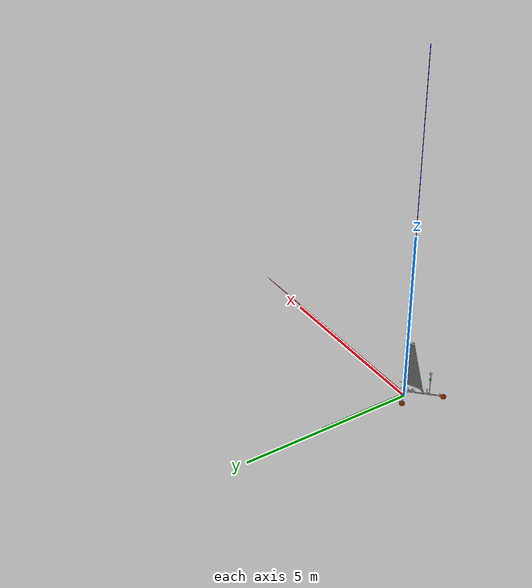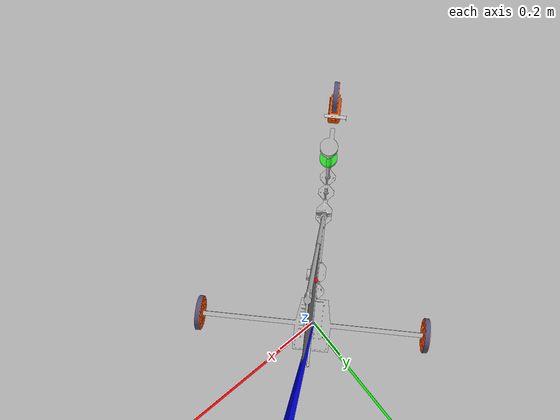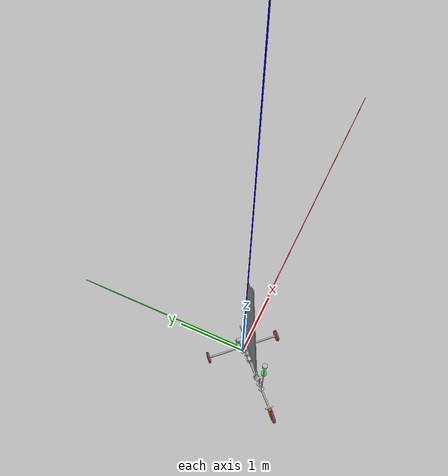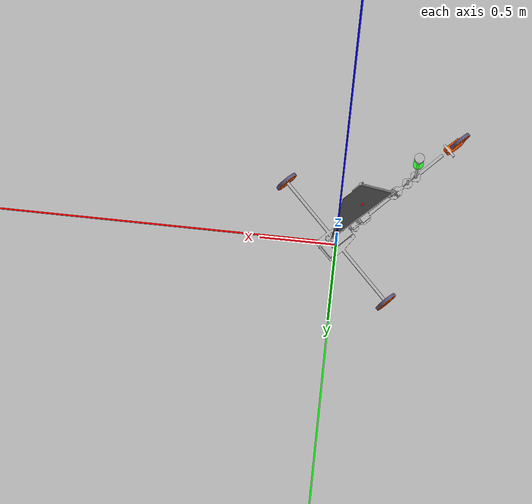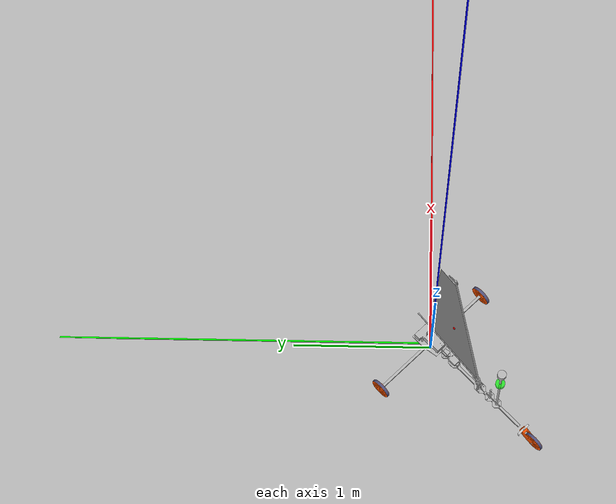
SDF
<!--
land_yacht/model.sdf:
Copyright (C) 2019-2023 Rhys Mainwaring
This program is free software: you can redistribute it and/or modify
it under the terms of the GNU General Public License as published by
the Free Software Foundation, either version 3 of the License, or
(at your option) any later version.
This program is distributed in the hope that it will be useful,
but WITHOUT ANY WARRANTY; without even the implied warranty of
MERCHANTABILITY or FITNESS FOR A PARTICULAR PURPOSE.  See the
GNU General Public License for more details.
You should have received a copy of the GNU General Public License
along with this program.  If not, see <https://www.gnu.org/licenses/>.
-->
<?xml version="1.0" ?>

<sdf version="1.6">
  <world name="beach">
    <physics name="1ms" type="ignored">
      <max_step_size>0.001</max_step_size>
      <real_time_factor>1</real_time_factor>
    </physics>

    <plugin filename="gz-sim-physics-system"
        name="gz::sim::systems::Physics">
    </plugin>
    <plugin filename="gz-sim-forcetorque-system"
        name="gz::sim::systems::ForceTorque">
    </plugin>
    <plugin filename="gz-sim-sensors-system"
        name="gz::sim::systems::Sensors">
      <render_engine>ogre2</render_engine>
      <background_color>0.8 0.8 0.8</background_color>
    </plugin>
    <plugin filename="gz-sim-scene-broadcaster-system"
        name="gz::sim::systems::SceneBroadcaster">
    </plugin>
    <plugin filename="gz-sim-user-commands-system"
        name="gz::sim::systems::UserCommands">
    </plugin>
    <plugin filename="gz-sim-imu-system"
        name="gz::sim::systems::Imu">
    </plugin>
    <plugin filename="asv_sim2-anemometer-system"
      name="gz::sim::systems::Anemometer">
    </plugin>

    <scene>
      <ambient>1.0 1.0 1.0</ambient>
      <background>0.8 0.8 0.8</background>
      <sky></sky>
    </scene>

    <spherical_coordinates>
      <latitude_deg>51.56965364806888</latitude_deg>
      <longitude_deg>-4.031611898852067</longitude_deg>
      <elevation>10.0</elevation>
      <heading_deg>-135</heading_deg>
      <surface_model>EARTH_WGS84</surface_model>
    </spherical_coordinates>

    <light type="directional" name="sun">
      <cast_shadows>true</cast_shadows>
      <pose>0 0 10 0 0 0</pose>
      <diffuse>0.8 0.8 0.8 1</diffuse>
      <specular>0.6 0.6 0.6 1</specular>
      <direction>-0.5 0.1 -0.9</direction>
    </light>

    <!-- Wind: 10 m/s from the SW (ENU) -->
    <wind>
      <linear_velocity>7 7 0</linear_velocity>
    </wind>

    <model name="axes">
      <static>1</static>
      <link name="link">
        <visual name="r">
          <cast_shadows>0</cast_shadows>
          <pose>5 0 0.1 0 0 0</pose>
          <geometry>
            <box>
              <size>10 0.01 0.01</size>
            </box>
          </geometry>
          <material>
            <ambient>1 0 0 1</ambient>
            <diffuse>1 0 0 1</diffuse>
            <emissive>1 0 0 1</emissive>
            <specular>0.5 0.5 0.5 1</specular>
          </material>
        </visual>
        <visual name="g">
          <cast_shadows>0</cast_shadows>
          <pose>0 5 0.1 0 0 0</pose>
          <geometry>
            <box>
              <size>0.01 10 0.01</size>
            </box>
          </geometry>
          <material>
            <ambient>0 1 0 1</ambient>
            <diffuse>0 1 0 1</diffuse>
            <emissive>0 1 0 1</emissive>
            <specular>0.5 0.5 0.5 1</specular>
          </material>
        </visual>
        <visual name="b">
          <cast_shadows>0</cast_shadows>
          <pose>0 0 5.1 0 0 0</pose>
          <geometry>
            <box>
              <size>0.01 0.01 10</size>
            </box>
          </geometry>
          <material>
            <ambient>0 0 1 1</ambient>
            <diffuse>0 0 1 1</diffuse>
            <emissive>0 0 1 1</emissive>
            <specular>0.5 0.5 0.5 1</specular>
          </material>
        </visual>
      </link>
    </model>

    <model name="beach">
      <static>true</static>
      <link name="link">
        <collision name="collision">
          <geometry>
            <mesh>
              <uri>./caswell_v2.dae</uri>
              <scale>1.5 1.5 1</scale>
            </mesh>
          </geometry>
          <surface>
            <contact>
              <collide_bitmask>0xffff</collide_bitmask>
            </contact>
            <friction>
              <ode>
                <mu>200</mu>
                <mu2>10</mu2>
              </ode>
            </friction>
          </surface>
        </collision>
        <visual name="visual">
          <cast_shadows>false</cast_shadows>
          <geometry>
            <mesh>
              <uri>./caswell_v2.dae</uri>
              <scale>1.5 1.5 1</scale>
            </mesh>
          </geometry>
        </visual>
      </link>
    </model>

    <model name="land_yacht_with_ardupilot">
      <pose>0 0 0.14 0 0 -2.356194</pose>

      <include>
        <pose>0 0 0 0 0 0</pose>
        <uri>model://land_yacht</uri>
        <name>land_yacht</name>
      </include>

      <plugin filename="gz-sim-joint-state-publisher-system"
        name="gz::sim::systems::JointStatePublisher">
      </plugin>

      <plugin filename="gz-sim-joint-position-controller-system"
          name="gz::sim::systems::JointPositionController">
        <joint_name>land_yacht::land_yacht_base::steering_joint</joint_name>
        <topic>/steering_joint/cmd_pos</topic>
        <p_gain>2</p_gain>
        <i_gain>0.0</i_gain>
        <d_gain>0.1</d_gain>
        <i_max>1</i_max>
        <i_min>-1</i_min>
        <cmd_max>10</cmd_max>
        <cmd_min>-10</cmd_min>
      </plugin>

      <plugin filename="asv_sim2-sail-position-controller-system"
          name="gz::sim::systems::SailPositionController">
        <joint_name>land_yacht::main_sail_joint</joint_name>
        <topic>/main_sail_joint/cmd_pos</topic>
        <p_gain>50</p_gain>
        <i_gain>0</i_gain>
        <d_gain>0.1</d_gain>
        <i_max>1</i_max>
        <i_min>-1</i_min>
        <cmd_max>500</cmd_max>
        <cmd_min>-500</cmd_min>
      </plugin>

      <plugin name="ArduPilotPlugin"
          filename="ArduPilotPlugin">
        <fdm_addr>127.0.0.1</fdm_addr>
        <fdm_port_in>9002</fdm_port_in>
        <connectionTimeoutMaxCount>5</connectionTimeoutMaxCount>
        <lock_step>1</lock_step>
        <gazeboXYZToNED>0 0 0 3.141593 0 1.57079632</gazeboXYZToNED>
        <modelXYZToAirplaneXForwardZDown>0 0 0 3.141593 0 0</modelXYZToAirplaneXForwardZDown>
        <imuName>land_yacht::land_yacht_base::base_link::imu_sensor</imuName>
        <anemometer>land_yacht::land_yacht_base::base_link::anemometer</anemometer>

        <!-- Control / channels -->
        <control channel="0">
          <jointName>land_yacht::land_yacht_base::steering_joint</jointName>
          <useForce>1</useForce>
          <multiplier>-1.570796</multiplier>
          <offset>-0.5</offset>
          <servo_max>2000</servo_max>
          <servo_min>1000</servo_min>
          <type>COMMAND</type>
          <cmd_topic>/steering_joint/cmd_pos</cmd_topic>
        </control>

        <!--
          SERVO3_FUNCTION 70 (Throttle)
          SERVO3_MAX 2000
          SERVO3_MIN 1000

          input command in [0, 1]
          multiplier = 800 (sets max rpm)
        -->

        <!--
          SERVO4_FUNCTION 89 (MainSail)
          SERVO4_MAX 2000
          SERVO4_MIN 1000

          input command in [0, 1]
          desired sail angle in [5, 50] deg
        -->
        <control channel="3">
          <jointName>land_yacht::main_sail_joint</jointName>
          <useForce>1</useForce>
          <multiplier>1.39626</multiplier>
          <offset>0</offset>
          <servo_max>2000</servo_max>
          <servo_min>1000</servo_min>
          <type>COMMAND</type>
          <cmd_topic>/main_sail_joint/cmd_pos</cmd_topic>
        </control>

      </plugin>
    </model>

  </world>
</sdf>

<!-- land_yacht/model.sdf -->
<sdf version="1.6">
  <model name="land_yacht">

    <!-- Land yacht base -->
    <include>
      <uri>model://land_yacht_base</uri>
      <name>land_yacht_base</name>
      <pose>0 0 0 0 0 0</pose>
    </include>

    <!-- Main sail -->
    <include>
      <pose>0.5 0 0.04 0 -0.20943951 0</pose>
      <uri>model://main_sail_ly01</uri>
      <name>main_sail</name>
    </include>

    <joint type="revolute" name="main_sail_joint">
      <pose relative_to="main_sail::main_sail_link">0 0 0 0 0 0</pose>
      <child>main_sail::main_sail_link</child>
      <parent>land_yacht_base::base_link</parent>
      <axis>
        <xyz>0 0 1</xyz>
        <dynamics>
          <damping>0.01</damping>
        </dynamics>
        <limit>
          <lower>-1.570796326</lower>
          <upper>1.570796326</upper>
        </limit>
      </axis>
      <sensor name="force_torque_sensor" type="force_torque">
        <always_on>true</always_on>
        <update_rate>30</update_rate>
        <visualize>false</visualize>
      </sensor>
    </joint>

  </model>
</sdf>

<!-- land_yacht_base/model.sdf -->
<sdf version="1.6">
  <model name="land_yacht_base">

    <!-- Base -->
    <link name="base_link">
      <!-- Main beam -->
      <visual name="base">
        <geometry>
          <mesh>
            <uri>model://land_yacht_base/meshes/land_yacht_base.dae</uri>
          </mesh>
        </geometry>
      </visual>

      <!-- Main beam -->
      <collision name="main_beam_collision">
        <pose>0.4 0 0.025 0 0 0</pose>
        <geometry>
          <box>
            <size>1.0 0.020 0.020</size>
          </box>
        </geometry>
      </collision>

      <!-- Cross beam -->
      <collision name="cross_beam_collision">
        <pose>0 0 0 0 0 0</pose>
        <geometry>
          <box>
            <size>0.020 1.0 0.020</size>
          </box>
        </geometry>
      </collision>

      <visual name="imu_visual">
        <pose>0.05 0 0.06 0 0 0</pose>
        <geometry>
          <box>
            <size>0.06 0.04 0.01</size>
          </box>
        </geometry>
        <material>
          <ambient>0.0 1.0 0.0 0.7</ambient>
          <diffuse>0.0 1.0 0.0 0.7</diffuse>
          <specular>0.1 0.1 0.1 0.7</specular>
        </material>
      </visual>

      <sensor name="imu_sensor" type="imu">
        <pose>0.05 0 0.06 3.141593 0 0</pose>
        <always_on>1</always_on>
        <update_rate>1000</update_rate>
        <visualize>1</visualize>
      </sensor>

      <visual name="anemometer_visual">
        <pose>0.67 0 0.5165 0 0 0</pose>
        <geometry>
          <cylinder>
            <radius>0.034</radius>
            <length>0.04</length>
          </cylinder>
        </geometry>
        <material>
          <ambient>0.0 1.0 0.0 0.7</ambient>
          <diffuse>0.0 1.0 0.0 0.7</diffuse>
          <specular>0.1 0.1 0.1 0.7</specular>
        </material>
      </visual>

      <sensor name="anemometer" type="custom" gz:type="anemometer">
        <pose>0.67 0 0.5165 0 0 0</pose>
        <always_on>1</always_on>
        <update_rate>30</update_rate>
        <gz:anemometer>
          <noise type="gaussian">
            <mean>0</mean>
            <stddev>0</stddev>
          </noise>
        </gz:anemometer>
      </sensor>

      <inertial>
        <pose>0.15 0 0.04 0 0 0</pose>
        <mass>3.544</mass>
        <inertia>
          <ixx>0.008623733</ixx>
          <ixy>0</ixy>
          <iyy>0.019521533</iyy>
          <iyz>0</iyz>
          <izz>0.026018867</izz>
        </inertia>
      </inertial>
    </link>

    <!-- Right wheel -->
    <link name="right_wheel_link">
      <pose>0 -0.512 0 1.570796327 0 0</pose>
      <visual name="right_wheel_visual">
        <geometry>
          <mesh>
            <uri>model://land_yacht_base/meshes/sand_wheel.dae</uri>
          </mesh>
        </geometry>
      </visual>
      <collision name="right_wheel_collision">
        <geometry>
          <cylinder>
            <radius>0.0750</radius>
            <length>0.0235</length>
          </cylinder>
        </geometry>
      </collision>
      <inertial>
        <mass>0.112</mass>
        <inertia>
          <ixx>0.000162654</ixx>
          <ixy>0</ixy>
          <iyy>0.000162654</iyy>
          <iyz>0</iyz>
          <izz>0.000315</izz>
        </inertia>
      </inertial>
    </link>

    <joint type="revolute" name="right_wheel_joint">
      <pose>0 0 0 0 0 0</pose>
      <child>right_wheel_link</child>
      <parent>base_link</parent>
      <axis>
        <xyz>0 0 1</xyz>
        <dynamics>
          <damping>0.001</damping>
        </dynamics>
        <limit>
          <lower>-1.0E8</lower>
          <upper>1.0E8</upper>
        </limit>
      </axis>
    </joint>

    <!-- Left wheel -->
    <link name="left_wheel_link">
      <pose>0 0.512 0 1.570796327 0 0</pose>
      <visual name="left_wheel_visual">
        <geometry>
          <mesh>
            <uri>model://land_yacht_base/meshes/sand_wheel.dae</uri>
          </mesh>
        </geometry>
      </visual>
      <collision name="left_wheel_collision">
        <geometry>
          <cylinder>
            <radius>0.0750</radius>
            <length>0.0235</length>
          </cylinder>
        </geometry>
      </collision>
      <inertial>
        <mass>0.112</mass>
        <inertia>
          <ixx>0.000162654</ixx>
          <ixy>0</ixy>
          <iyy>0.000162654</iyy>
          <iyz>0</iyz>
          <izz>0.000315</izz>
        </inertia>
      </inertial>
    </link>

    <joint type="revolute" name="left_wheel_joint">
      <pose>0 0 0 0 0 0</pose>
      <child>left_wheel_link</child>
      <parent>base_link</parent>
      <axis>
        <xyz>0 0 1</xyz>
        <dynamics>
          <damping>0.001</damping>
        </dynamics>
        <limit>
          <lower>-1.0E8</lower>
          <upper>1.0E8</upper>
        </limit>
      </axis>
    </joint>

    <!-- Steering unit -->
    <link name="steering_link">
      <pose>1.05 0 0 0 0 0</pose>

      <visual name="steering_visual">
        <pose>0 0 0 0 0 0</pose>
        <geometry>
          <mesh>
            <uri>model://land_yacht_base/meshes/land_yacht_forks_v4.dae</uri>
          </mesh>
        </geometry>
      </visual>
      <collision name="steering_collision">
        <pose>-0.05 0 0.01 0 0 0</pose>
        <geometry>
          <box>
            <size>0.14 0.05 0.05</size>
          </box>
        </geometry>
      </collision>

      <inertial>
        <pose>-0.05 0 0.01 0 0 0</pose>
        <mass>0.073</mass>
        <inertia>
          <ixx>3.04167E-05</ixx>
          <ixy>0</ixy>
          <iyy>0.000134442</iyy>
          <iyz>0</iyz>
          <izz>0.000134442</izz>
        </inertia>
      </inertial>
    </link>

    <joint type="revolute" name="steering_joint">
      <pose>-0.114 0 0.045 0 0 0</pose>
      <child>steering_link</child>
      <parent>base_link</parent>
      <axis>
        <xyz>-1 0 0.700207538</xyz>
        <dynamics>
          <damping>0.01</damping>
        </dynamics>
        <limit>
          <lower>-0.8</lower>
          <upper>0.8</upper>
        </limit>
      </axis>
    </joint>

    <!-- Front wheel -->
    <link name="front_wheel_link">
      <pose>1.05 0 0 1.570796327 0 0</pose>
      <visual name="front_wheel_visual">
        <geometry>
          <mesh>
            <uri>model://land_yacht_base/meshes/sand_wheel.dae</uri>
          </mesh>
        </geometry>
      </visual>
      <collision name="front_wheel_collision">
        <geometry>
          <cylinder>
            <radius>0.0750</radius>
            <length>0.0235</length>
          </cylinder>
        </geometry>
        <surface>
          <friction>
            <ode>
              <mu>1.0</mu>
              <mu2>1.0</mu2>
              <fdir1>1 0 0</fdir1>
            </ode>
          </friction>
        </surface>
      </collision>
      <inertial>
        <mass>0.112</mass>
        <inertia>
          <ixx>0.000162654</ixx>
          <ixy>0</ixy>
          <iyy>0.000162654</iyy>
          <iyz>0</iyz>
          <izz>0.000315</izz>
        </inertia>
      </inertial>
    </link>

    <joint type="revolute" name="front_wheel_joint">
      <pose>0 0 0 0 0 0</pose>
      <child>front_wheel_link</child>
      <parent>steering_link</parent>
      <axis>
        <xyz>0 0 1</xyz>
        <dynamics>
          <damping>0.01</damping>
        </dynamics>
        <limit>
          <lower>-1.0E8</lower>
          <upper>1.0E8</upper>
        </limit>
      </axis>
      <sensor name="force_torque_sensor" type="force_torque">
        <always_on>true</always_on>
        <update_rate>30</update_rate>
        <visualize>true</visualize>
      </sensor>
    </joint>

    <!-- Thruster -->

  </model>
</sdf>

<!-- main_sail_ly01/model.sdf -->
<sdf version="1.6">
  <model name="main_sail_ly01">

    <!-- Plugins -->
    <plugin name="gz::sim::systems::SailLiftDrag"
        filename="asv_sim2-sail-lift-drag-system">
      <a0>0.0</a0>
      <cla>6.2832</cla>
      <alpha_stall>0.1592</alpha_stall>
      <cla_stall>-0.7083</cla_stall>
      <cda>0.63662</cda>
      <area>0.4858</area>
      <fluid_density>1.2</fluid_density>
      <forward>1 0 0</forward>
      <upward>0 1 0</upward>
      <cp>-0.15 0.0 0.75</cp>
      <link_name>main_sail_link</link_name>
      <radial_symmetry>true</radial_symmetry>
      <topic>lift_drag</topic>
    </plugin>

    <!-- Main sail-->
    <link name="main_sail_link">
      <inertial>
        <pose>-0.15 0.0 0.75 0 0 0</pose>
        <mass>0.5</mass>
        <inertia>
          <ixx>0.081670833</ixx>
          <ixy>0</ixy>
          <iyy>0.088333333</iyy>
          <iyz>0</iyz>
          <izz>0.006670833</izz>
        </inertia>
      </inertial>
      <collision name="sail_collision">
        <pose>-0.2 0 0.9 0 0 0</pose>
        <geometry>
          <box>
            <size>0.4 0.01 1.4</size>
          </box>
        </geometry>
      </collision>
      <visual name="rig_visual">
        <geometry>
          <mesh>
            <uri>model://main_sail_ly01/meshes/land_yacht_rig.dae</uri>
          </mesh>
        </geometry>
      </visual>
      <visual name="sail_visual">
        <pose>-0.01 0 0.12 0 0.20943951 0</pose>
        <geometry>
          <mesh>
            <uri>model://main_sail_ly01/meshes/land_yacht_flat_sail.stl</uri>
          </mesh>
        </geometry>
        <material>
          <ambient>0.5 0.5 0.5 0.9</ambient>
          <diffuse>0.5 0.5 0.5 0.9</diffuse>
          <specular>0.1 0.1 0.1 0.9</specular>
        </material>
      </visual>
      <visual name="cp_visual">
        <pose>-0.15 0.0 0.75 0 0 0</pose>
        <geometry>
          <sphere>
            <radius>0.01</radius>
          </sphere>
        </geometry>
        <material>
          <ambient>1.0 0.0 0.0 1.0</ambient>
          <diffuse>1.0 0.0 0.0 1.0</diffuse>
          <specular>0.1 0.1 0.1 1.0</specular>
        </material>
      </visual>
    </link>

  </model>
</sdf>
